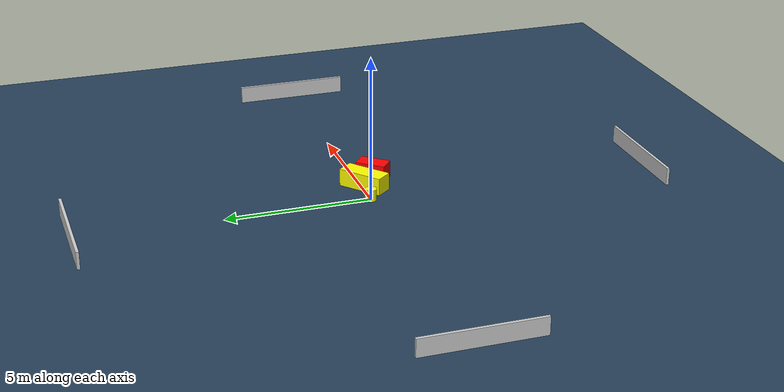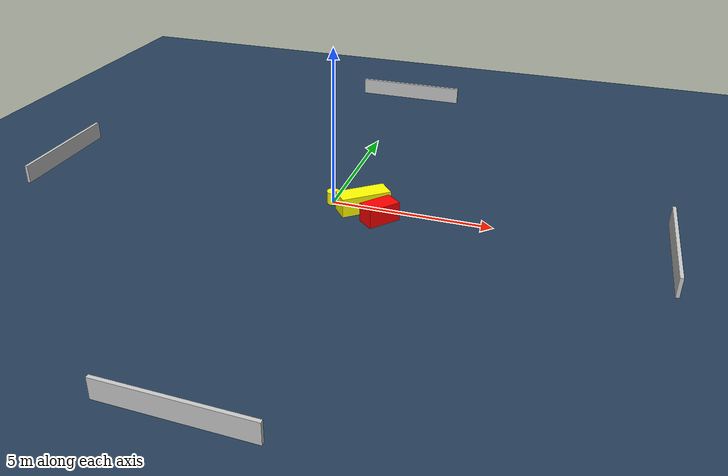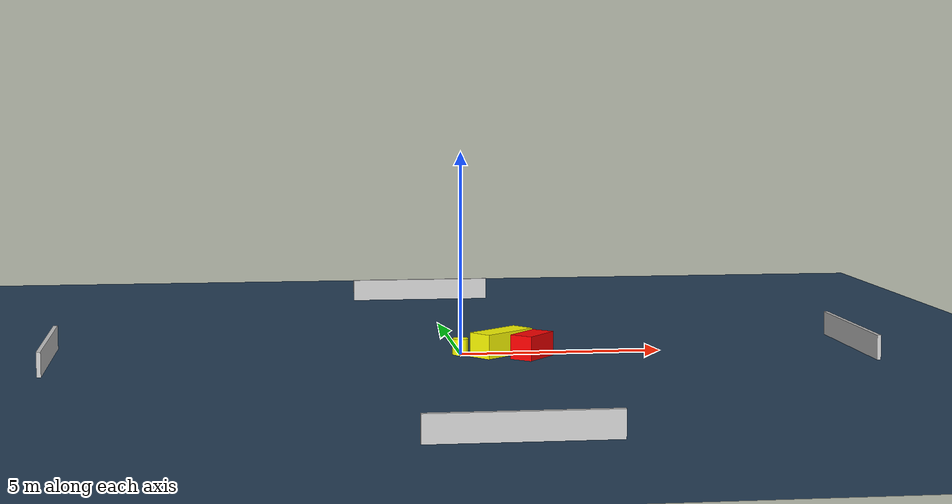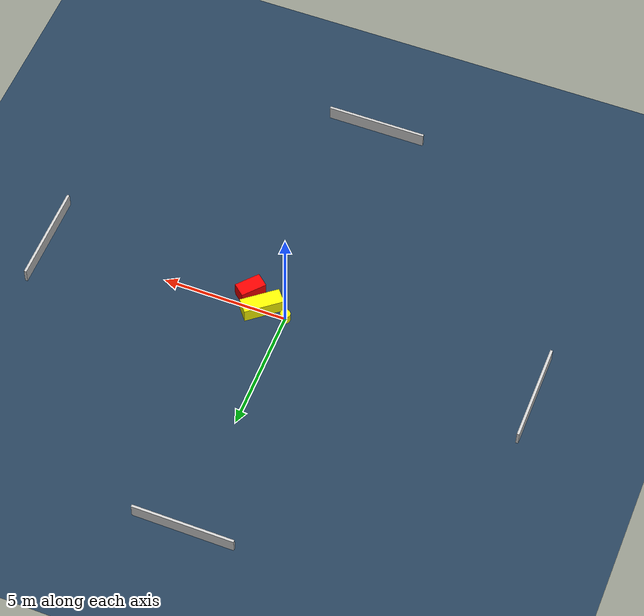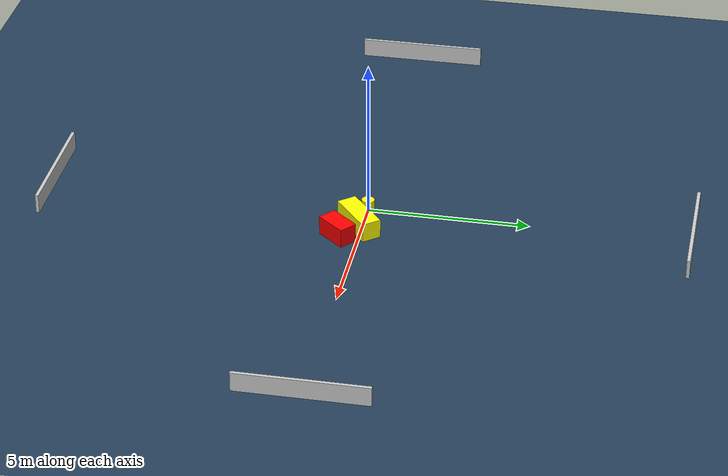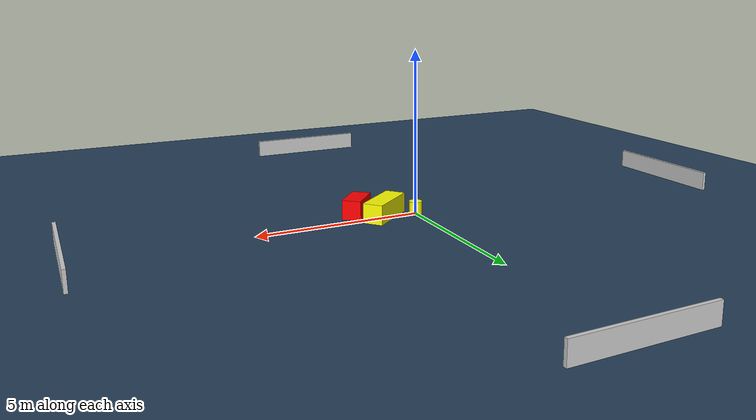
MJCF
<?xml version="1.0" ?>
<mujoco model="generated_environment">
  <option timestep="0.01" integrator="RK4" cone="elliptic"/>
  <default>
    <geom density="1"/>
  </default>
  <asset>
    <texture builtin="gradient" height="3072" name="skybox" rgb1="0.3 0.5 0.7" rgb2="0 0 0" type="skybox" width="512"/>
    <texture builtin="checker" height="300" name="groundplane" rgb1="0.2 0.3 0.4" rgb2="0.1 0.2 0.3" type="2d" width="300"/>
    <material name="groundplane" reflectance="0.2" texrepeat="5 5" texture="groundplane"/>
  </asset>
  <worldbody>
    <light dir="0 0 -1" directional="true" pos="0 0 1.5"/>
    <geom condim="3" friction="0.5 0.005 0.001" material="groundplane" name="floor" pos="0 0 0" size="0 0 0.05" type="plane"/>
    <body name="walls">
      <geom name="wall_1" condim="4" pos="-10.0 0.0 0.3" rgba="0.800000011920929 0.800000011920929 0.800000011920929 1.0" size="0.05 2.0 0.3" type="box"/>
      <geom name="wall_2" condim="4" pos="10.0 0.0 0.3" rgba="0.800000011920929 0.800000011920929 0.800000011920929 1.0" size="0.05 2.0 0.3" type="box"/>
      <geom name="wall_3" condim="4" pos="0.0 -10.0 0.3" rgba="0.800000011920929 0.800000011920929 0.800000011920929 1.0" size="2.0 0.05 0.3" type="box"/>
      <geom name="wall_4" condim="4" pos="0.0 10.0 0.3" rgba="0.800000011920929 0.800000011920929 0.800000011920929 1.0" size="2.0 0.05 0.3" type="box"/>
    </body>
    <body name="robot">
      <joint name="joint_x" type="slide" pos="0 0 0" axis="1 0 0"/>
      <joint name="joint_y" type="slide" pos="0 0 0" axis="0 1 0"/>
      <geom name="robot" type="cylinder" pos="0.0 0.0 0.2" size="0.2 0.2 0.0" mass="5.0" friction="1.0 0.005 0.0001" condim="4" rgba="1.0 1.0 0.0 1.0"/>
    </body>
    <body name="obstacle_1_movable">
      <geom name="obstacle_1_movable" condim="4" pos="1.0082471621685887 -0.09969717540379418 0.3" euler="0 0 219.4186232555414" friction="0.0 0.005 0.001" rgba="1.0 1.0 0.0 1.0" size="0.7946365925423857 0.310641163020348 0.3" type="box" mass="0.1"/>
      <joint type="free"/>
    </body>
    <body name="obstacle_2_static">
      <geom name="obstacle_2_static" condim="4" pos="1.6869981247614272 -0.6269007891545231 0.3" euler="0 0 49.764575196503024" friction="0.0 0.005 0.001" rgba="1.0 0.0 0.0 1.0" size="0.522294185804091 0.2914850171894815 0.3" type="box"/>
    </body>
  </worldbody>
  <actuator>
    <motor name="actuator_x" joint="joint_x" gear="1" ctrlrange="-1 1"/>
    <motor name="actuator_y" joint="joint_y" gear="1" ctrlrange="-1 1"/>
  </actuator>
</mujoco>
